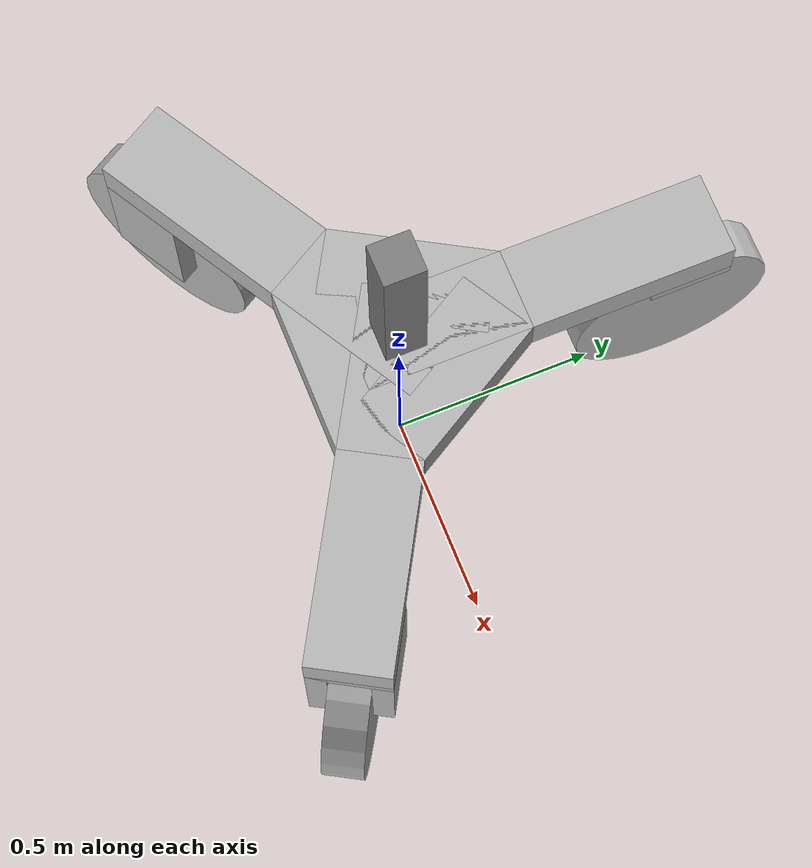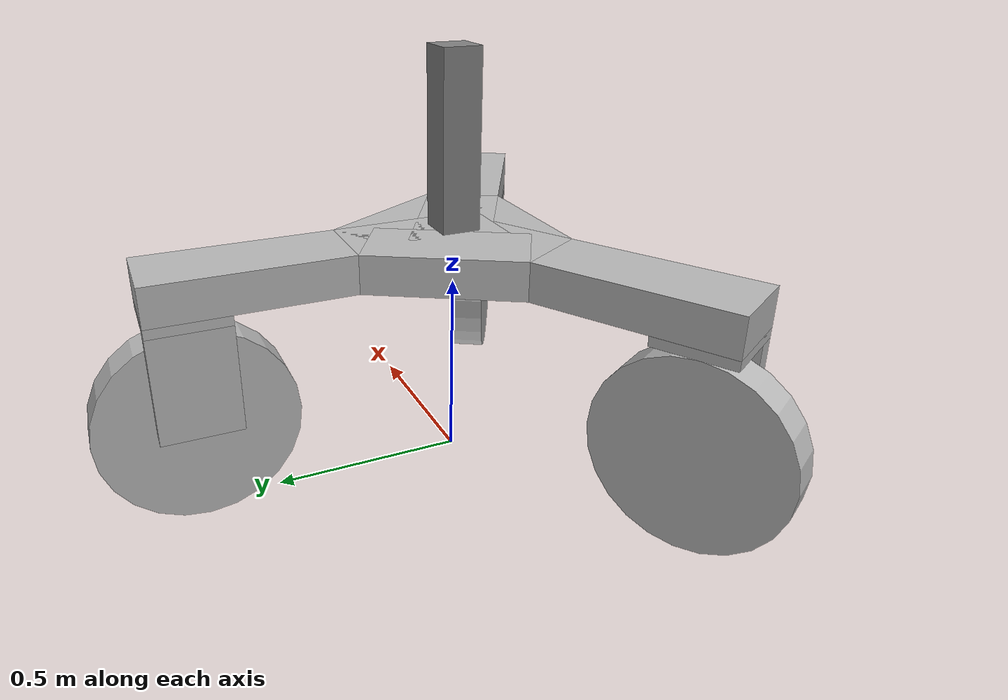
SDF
<?xml version='1.0'?>
<sdf version='1.4'>
  <model name="chimera">
    <plugin name="gps_receiver" filename="libhector_gazebo_ros_gps.so">
      <alwayson>true</alwayson>
      <updaterate>1.0</updaterate>
      <bodyname>base_link</bodyname>
      <topic>/gps/fix</topic>
      <topicName>/gps/fix</topicName>
      <velocitytopicname>/fix_velocity</velocitytopicname>
      <drift>5.0 5.0 5.0</drift>
      <gaussiannoise>0.1 0.1 0.1</gaussiannoise>
      <velocitydrift>0 0 0</velocitydrift>
      <velocitygaussiannoise>0.1 0.1 0.1</velocitygaussiannoise>
      <frameName>world</frameName>
    </plugin>
    <static>false</static>
    <link name = 'chassis'>
      <sensor name="imu_sensor_0" type="imu">
        <pose>0 0 0.1 0 0 0</pose>
        <always_on>1</always_on>
        <update_rate>100.0</update_rate>
        <visualize>true</visualize>
        <topic>/imu0/data</topic>
        <plugin filename="libgazebo_ros_imu_sensor.so" name="imu0_plugin">
          <topicName>/imu0/data</topicName>
          <bodyName>imu0_link</bodyName>
          <updateRateHZ>10.0</updateRateHZ>
          <gaussianNoise>0.0</gaussianNoise>
          <xyzOffset>0 0 0</xyzOffset>
          <rpyOffset>0 0 0</rpyOffset>
          <frameName>imu0_link</frameName>
        </plugin>
      </sensor>
      <sensor name="imu_sensor_1" type="imu">
        <pose>0.1 0 0 0 0 0</pose>
        <always_on>1</always_on>
        <update_rate>100.0</update_rate>
        <visualize>true</visualize>
        <topic>/imu1/data</topic>
        <plugin filename="libgazebo_ros_imu_sensor.so" name="imu1_plugin">
          <topicName>/imu1/data</topicName>
          <bodyName>imu1_link</bodyName>
          <updateRateHZ>10.0</updateRateHZ>
          <gaussianNoise>0.0</gaussianNoise>
          <xyzOffset>0 0 0</xyzOffset>
          <rpyOffset>0 0 0</rpyOffset>
          <frameName>imu1_link</frameName>
        </plugin>
      </sensor>
      <sensor name="imu_sensor_2" type="imu">
        <pose>-0.05 0.0866 0 0 0 0</pose>
        <always_on>1</always_on>
        <update_rate>100.0</update_rate>
        <visualize>true</visualize>
        <topic>/imu2/data</topic>
        <plugin filename="libgazebo_ros_imu_sensor.so" name="imu2_plugin">
          <topicName>/imu2/data</topicName>
          <bodyName>imu2_link</bodyName>
          <updateRateHZ>10.0</updateRateHZ>
          <gaussianNoise>0.0</gaussianNoise>
          <xyzOffset>0 0 0</xyzOffset>
          <rpyOffset>0 0 0</rpyOffset>
          <frameName>imu2_link</frameName>
        </plugin>
      </sensor>
      <sensor name="imu_sensor_3" type="imu">
        <pose>-0.05 -0.0866 0 0 0 0</pose>
        <always_on>1</always_on>
        <update_rate>100.0</update_rate>
        <visualize>true</visualize>
        <topic>/imu3/data</topic>
        <plugin filename="libgazebo_ros_imu_sensor.so" name="imu3_plugin">
          <topicName>/imu3/data</topicName>
          <bodyName>imu3_link</bodyName>
          <updateRateHZ>10.0</updateRateHZ>
          <gaussianNoise>0.0</gaussianNoise>
          <xyzOffset>0 0 0</xyzOffset>
          <rpyOffset>0 0 0</rpyOffset>
          <frameName>imu3_link</frameName>
        </plugin>
      </sensor>
      <pose> 0 0 .6 0 0 0 </pose>
      <inertial>
          <inertia>
              <ixx>1e-3</ixx>
              <ixy>0</ixy>
              <ixz>0</ixz>
              <iyy>1e-3</iyy>
              <iyz>0</iyz>
              <izz>1e-3</izz>
          </inertia>
          <mass>0.020</mass>
      </inertial>
      <collision name = 'central-coll'>
        <pose>0 0 .25 0 0 0</pose>
        <geometry>
          <box>
            <size>.1 .1 .5</size>
          </box>
        </geometry>
      </collision>
      <visual name = 'central-vis'>
        <material>
          <ambient>0.5 0.5 0.5 1</ambient>
        </material>
        <pose>0 0 .25 0 0 0</pose>
        <geometry>
          <box>
            <size>.1 .1 .5</size>
          </box>
        </geometry>
      </visual>
      <collision name = 'bow-coll'>
        <pose>0	0.08867529536	0	0	0	1.570796327</pose>
        <geometry>
          <box>
            <size>.4 .2 .1 </size>
          </box>
        </geometry>
      </collision>
      <visual name='bow-vis'>
        <pose>0	0.08867529536	0	0	0	1.570796327</pose>
        <geometry>
          <box>
            <size> .4 .2 .1 </size>
          </box>
        </geometry>
      </visual>
      <collision name = 'port-bow-coll'>
        <pose>-0.11339739	0.06547001365	0	0	0	1.047197551</pose>
        <geometry>
          <box>
            <size>.4 .2 .1 </size>
          </box>
        </geometry>
      </collision>
      <visual name='port-bow-vis'>
        <pose>-0.11339739	0.06547001365	0	0	0	1.047197551</pose>
        <geometry>
          <box>
            <size> .4 .2 .1 </size>
          </box>
        </geometry>
      </visual>
      <collision name = 'port-stern-coll'>
        <pose>-0.07679505847	-0.04433764768	0	0	0	0.5235987756</pose>
        <geometry>
          <box>
            <size>.4 .2 .1 </size>
          </box>
        </geometry>
      </collision>
      <visual name='port-stern-vis'>
        <pose>-0.07679505847	-0.04433764768	0	0	0	0.5235987756</pose>
        <geometry>
          <box>
            <size> .4 .2 .1 </size>
          </box>
        </geometry>
      </visual>
      <collision name = 'stern-coll'>
        <pose>0	-0.1309400273	0	0	0	0</pose>
        <geometry>
          <box>
            <size>.4 .2 .1 </size>
          </box>
        </geometry>
      </collision>
      <visual name='stern-vis'>
        <pose>0	-0.1309400273	0	0	0	0</pose>
        <geometry>
          <box>
            <size> .4 .2 .1 </size>
          </box>
        </geometry>
      </visual>
      <collision name = 'starboard-stern-coll'>
        <pose>0.07679505847	-0.04433764768	0	0	0	2.617993878</pose>
        <geometry>
          <box>
            <size>.4 .2 .1 </size>
          </box>
        </geometry>
      </collision>
      <visual name='starboard-stern-vis'>
        <pose>0.07679505847	-0.04433764768	0	0	0	2.617993878</pose>
        <geometry>
          <box>
            <size> .4 .2 .1 </size>
          </box>
        </geometry>
      </visual>
      <collision name = 'starboard-bow-coll'>
        <pose>0.11339739	0.06547001365	0	0	0	2.094395102</pose>
        <geometry>
          <box>
            <size>.4 .2 .1 </size>
          </box>
        </geometry>
      </collision>
      <visual name='starboard-bow-vis'>
        <pose>0.11339739	0.06547001365	0	0	0	2.094395102</pose>
        <geometry>
          <box>
            <size> .4 .2 .1 </size>
          </box>
        </geometry>
      </visual>
    </link>
    <link name = "bow-stabilizer">
      <pose>0 0.5386752954 0.6 0 0 1.570796327</pose>
      <inertial>
          <inertia>
              <ixx>1e-3</ixx>
              <ixy>0</ixy>
              <ixz>0</ixz>
              <iyy>1e-3</iyy>
              <iyz>0</iyz>
              <izz>1e-3</izz>
          </inertia>
          <mass>0.0030</mass>
      </inertial>
      <collision name = "stabilizer-coll">
        <geometry>
          <box>
            <size>0.5 0.2 0.1</size>
          </box>
        </geometry>
      </collision>
      <visual name = "stabilizer-vis">
        <geometry>
          <box>
            <size>0.5 0.2 0.1</size>
          </box>
        </geometry>
      </visual>
    </link>
    <link name = "bow-coupler">
      <pose>0 0.6886752954 0.4 0 0 1.570796327</pose>
      <inertial>
          <inertia>
              <ixx>1e-3</ixx>
              <ixy>0</ixy>
              <ixz>0</ixz>
              <iyy>1e-3</iyy>
              <iyz>0</iyz>
              <izz>1e-3</izz>
          </inertia>
          <mass>0.001</mass>
      </inertial>
      <collision name = "coupler-top-coll">
        <pose>0 0 0.1375 0 0 0</pose>
        <geometry>
          <box>
            <size>0.2 0.2 0.025</size>
          </box>
        </geometry>
      </collision>
      <visual name = "coupler-top-vis">
        <pose>0 0 0.1375 0 0 0</pose>
        <geometry>
          <box>
            <size>0.2 0.2 0.025</size>
          </box>
        </geometry>
      </visual>
      <collision name = "coupler-side-coll">
        <pose>0.075 0 0 0 0 0</pose>
        <geometry>
          <box>
            <size>0.05 0.2 0.3</size>
          </box>
        </geometry>
      </collision>
      <visual name = "coupler-side-vis">
        <pose>0 0.075 0 0 0 0</pose>
        <geometry>
          <box>
            <size>0.2 0.05 0.3</size>
          </box>
        </geometry>
      </visual>
    </link>
    <link name = "bow-wheel">
      <pose>0 0.6886752954 0.25 1.570796327 0 1.570796327</pose>
      <inertial>
          <inertia>
              <ixx>1e-3</ixx>
              <ixy>0</ixy>
              <ixz>0</ixz>
              <iyy>1e-3</iyy>
              <iyz>0</iyz>
              <izz>1e-3</izz>
          </inertia>
          <mass>0.003</mass>
      </inertial>
      <collision name = "wheel-coll">
        <geometry>
          <cylinder>
            <radius>0.25</radius>
            <length>0.1</length>
          </cylinder>
        </geometry>
      </collision>
      <visual name = "wheel-vis">
        <geometry>
          <cylinder>
            <radius>0.25</radius>
            <length>0.1</length>
          </cylinder>
        </geometry>
      </visual>
    </link>
    <link name = "port-stern-stabilizer">
      <pose>-0.4665064902 -0.2693376477 0.6 0 0 3.665191429</pose>
      <inertial>
          <inertia>
              <ixx>1e-3</ixx>
              <ixy>0</ixy>
              <ixz>0</ixz>
              <iyy>1e-3</iyy>
              <iyz>0</iyz>
              <izz>1e-3</izz>
          </inertia>
          <mass>0.003</mass>
      </inertial>
      <collision name = "stabilizer-coll">
        <geometry>
          <box>
            <size>0.5 0.2 0.1</size>
          </box>
        </geometry>
      </collision>
      <visual name = "stabilizer-vis">
        <geometry>
          <box>
            <size>0.5 0.2 0.1</size>
          </box>
        </geometry>
      </visual>
    </link>
    <link name = "port-stern-coupler">
      <pose>-0.5964103007 -0.3443376477 0.4 0 0 3.665191429</pose>
      <inertial>
          <inertia>
              <ixx>1e-3</ixx>
              <ixy>0</ixy>
              <ixz>0</ixz>
              <iyy>1e-3</iyy>
              <iyz>0</iyz>
              <izz>1e-3</izz>
          </inertia>
          <mass>0.001</mass>
      </inertial>
      <collision name = "coupler-top-coll">
        <pose>0 0 0.1375 0 0 0</pose>
        <geometry>
          <box>
            <size>0.2 0.2 0.025</size>
          </box>
        </geometry>
      </collision>
      <visual name = "coupler-top-vis">
        <pose>0 0 0.1375 0 0 0</pose>
        <geometry>
          <box>
            <size>0.2 0.2 0.025</size>
          </box>
        </geometry>
      </visual>
      <collision name = "coupler-side-coll">
        <pose>0.075 0 0 0 0 0</pose>
        <geometry>
          <box>
            <size>0.05 0.2 0.3</size>
          </box>
        </geometry>
      </collision>
      <visual name = "coupler-side-vis">
        <pose>0 0.075 0 0 0 0</pose>
        <geometry>
          <box>
            <size>0.2 0.05 0.3</size>
          </box>
        </geometry>
      </visual>
    </link>
    <link name = "port-stern-wheel">
      <pose>-0.5964103007 -0.3443376477 0.25 1.570796327 0 3.665191429</pose>
      <inertial>
          <inertia>
              <ixx>1e-3</ixx>
              <ixy>0</ixy>
              <ixz>0</ixz>
              <iyy>1e-3</iyy>
              <iyz>0</iyz>
              <izz>1e-3</izz>
          </inertia>
          <mass>0.003</mass>
      </inertial>
      <collision name = "wheel-coll">
        <geometry>
          <cylinder>
            <radius>0.25</radius>
            <length>0.1</length>
          </cylinder>
        </geometry>
      </collision>
      <visual name = "wheel-vis">
        <geometry>
          <cylinder>
            <radius>0.25</radius>
            <length>0.1</length>
          </cylinder>
        </geometry>
      </visual>
    </link>
    <link name = "starboard-stern-stabilizer">
      <pose>0.4665064902 -0.2693376477 0.6 0 0 5.759586532</pose>
      <inertial>
          <inertia>
              <ixx>1e-3</ixx>
              <ixy>0</ixy>
              <ixz>0</ixz>
              <iyy>1e-3</iyy>
              <iyz>0</iyz>
              <izz>1e-3</izz>
          </inertia>
          <mass>0.003</mass>
      </inertial>
      <collision name = "stabilizer-coll">
        <geometry>
          <box>
            <size>0.5 0.2 0.1</size>
          </box>
        </geometry>
      </collision>
      <visual name = "stabilizer-vis">
        <geometry>
          <box>
            <size>0.5 0.2 0.1</size>
          </box>
        </geometry>
      </visual>
    </link>
    <link name = "starboard-stern-coupler">
      <pose>0.5964103007 -0.3443376477 0.4 0 0 5.759586532</pose>
      <inertial>
          <inertia>
              <ixx>1e-3</ixx>
              <ixy>0</ixy>
              <ixz>0</ixz>
              <iyy>1e-3</iyy>
              <iyz>0</iyz>
              <izz>1e-3</izz>
          </inertia>
          <mass>0.003</mass>
      </inertial>
      <collision name = "coupler-top-coll">
        <pose>0 0 0.1375 0 0 0</pose>
        <geometry>
          <box>
            <size>0.2 0.2 0.025</size>
          </box>
        </geometry>
      </collision>
      <visual name = "coupler-top-vis">
        <pose>0 0 0.1375 0 0 0</pose>
        <geometry>
          <box>
            <size>0.2 0.2 0.025</size>
          </box>
        </geometry>
      </visual>
      <collision name = "coupler-side-right-coll">
        <pose>0 0.075 0 0 0 0</pose>
        <geometry>
          <box>
            <size>0.05 0.2 0.3</size>
          </box>
        </geometry>
      </collision>
      <visual name = "coupler-side-right-vis">
        <pose>0 0.075 0 0 0 0</pose>
        <geometry>
          <box>
            <size>0.2 0.05 0.3</size>
          </box>
        </geometry>
      </visual>
      <collision name = "coupler-side-left-coll">
        <pose>0 -0.075 0 0 0 0</pose>
        <geometry>
          <box>
            <size>0.05 0.2 0.3</size>
          </box>
        </geometry>
      </collision>
      <visual name = "coupler-side-left-vis">
        <pose>0 -0.075 0 0 0 0</pose>
        <geometry>
          <box>
            <size>0.2 0.05 0.3</size>
          </box>
        </geometry>
      </visual>
    </link>
    <link name = "starboard-stern-wheel">
      <pose>0.5964103007 -0.3443376477 0.25 1.570796327 0 5.759586532</pose>
      <inertial>
          <inertia>
              <ixx>1e-3</ixx>
              <ixy>0</ixy>
              <ixz>0</ixz>
              <iyy>1e-3</iyy>
              <iyz>0</iyz>
              <izz>1e-3</izz>
          </inertia>
          <mass>0.003</mass>
      </inertial>
      <collision name = "wheel-coll">
        <geometry>
          <cylinder>
            <radius>0.25</radius>
            <length>0.1</length>
          </cylinder>
        </geometry>
      </collision>
      <visual name = "wheel-vis">
        <geometry>
          <cylinder>
            <radius>0.25</radius>
            <length>0.1</length>
          </cylinder>
        </geometry>
      </visual>
    </link>
    <joint name = "chassis_bow-stabilizer" type="revolute">
      <pose>-0.25 0 0 1.570796327 0 0</pose>
      <child>bow-stabilizer</child>
      <parent>chassis</parent>
      <axis>
        <limit>
          <lower>-0.4</lower>
          <upper>0.4</upper>
        </limit>
        <xyz>1 0 0</xyz>
      </axis>
    </joint>
    <joint name = "bow-stabilizer_coupler" type="revolute">
      <pose>0 0 0.15 0 0 0</pose>
      <child>bow-coupler</child>
      <parent>bow-stabilizer</parent>
      <axis>
        <limit>
          <lower>-3.141592654</lower>
          <upper>3.141592654</upper>
        </limit>
        <xyz>0 0 1</xyz>
      </axis>
    </joint>
    <joint name = "bow-coupler_wheel" type="revolute">
      <pose>0 0 0 0 0 0</pose>
      <child>bow-wheel</child>
      <parent>bow-coupler</parent>
      <axis>
        <xyz>1 0 0</xyz>
      </axis>
    </joint>
    <joint name = "chassis_port-stern-stabilizer" type="revolute">
      <pose>-0.25 0 0 1.570796327 0 0</pose>
      <child>port-stern-stabilizer</child>
      <parent>chassis</parent>
      <axis>
        <limit>
          <lower>-0.4</lower>
          <upper>0.4</upper>
        </limit>
        <xyz>-0.5 0.8660254038 0</xyz>
      </axis>
    </joint>
    <joint name = "port-stern-stabilizer_coupler" type="revolute">
      <pose>0 0 0.15 0 0 0</pose>
      <child>port-stern-coupler</child>
      <parent>port-stern-stabilizer</parent>
      <axis>
        <limit>
          <lower>-3.141592654</lower>
          <upper>3.141592654</upper>
        </limit>
        <xyz>0 0 1</xyz>
      </axis>
    </joint>
    <joint name = "port-stern-coupler_wheel" type="revolute">
      <pose>0 0 0 0 0 0</pose>
      <child>port-stern-wheel</child>
      <parent>port-stern-coupler</parent>
      <axis>
        <xyz>-0.5 0.8660254038 0</xyz>
      </axis>
    </joint>
    <joint name = "chassis_starboard-stern-stabilizer" type="revolute">
      <pose>-0.25 0 0 1.570796327 0 0</pose>
      <child>starboard-stern-stabilizer</child>
      <parent>chassis</parent>
      <axis>
        <limit>
          <lower>-0.4</lower>
          <upper>0.4</upper>
        </limit>
        <xyz>-0.5 -0.8660254038 0</xyz>
      </axis>
    </joint>
    <joint name = "starboard-stern-stabilizer_coupler" type="revolute">
      <pose>0 0 0.15 0 0 0</pose>
      <child>starboard-stern-coupler</child>
      <parent>starboard-stern-stabilizer</parent>
      <axis>
        <limit>
          <lower>-3.141592654</lower>
          <upper>3.141592654</upper>
        </limit>
        <xyz>0 0 1</xyz>
      </axis>
    </joint>
    <joint name = "starboard-stern-coupler_wheel" type="revolute">
      <pose>0 0 0 0 0 0</pose>
      <child>starboard-stern-wheel</child>
      <parent>starboard-stern-coupler</parent>
      <axis>
        <xyz>-0.5 -0.8660254038 0</xyz>
      </axis>
    </joint>
  </model>
</sdf>
